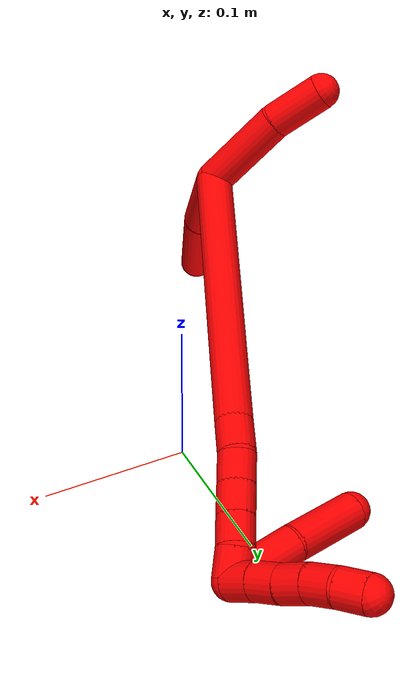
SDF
<sdf version="1.7">
 <world name="default">
  <model name="2">
   <static>0</static>
   <link name="2">
    <collision name="collision-cylinder-e_1_2_8">
     <pose>-0.020184 -0.002382 -0.024292 3.04385 -0.690933 -2.87145</pose>
     <geometry><cylinder><radius>0.0125</radius><length>0.063346</length></cylinder></geometry>
     <surface>
      <friction><ode><mu>1.16</mu><mu2>1.16</mu2><slip1>0</slip1><slip2>0</slip2></ode></friction>
      <contact><ode><kp>1e+06</kp><kd>1</kd><max_vel>0</max_vel><min_depth>0.001</min_depth></ode></contact>
     </surface>
    </collision>
    <visual name="visual-cylinder-e_1_2_8">
     <pose>-0.020184 -0.002382 -0.024292 3.04385 -0.690933 -2.87145</pose>
     <geometry><cylinder><radius>0.0125</radius><length>0.063346</length></cylinder></geometry>
     <material><ambient>1 0 0 1</ambient></material>
    </visual>
    <collision name="collision-cylinder-e_2_8_6">
     <pose>-0.071332 -0.010486 -0.078345 2.95163 -0.796141 -2.69601</pose>
     <geometry><cylinder><radius>0.0125</radius><length>0.086654</length></cylinder></geometry>
     <surface>
      <friction><ode><mu>1.16</mu><mu2>1.16</mu2><slip1>0</slip1><slip2>0</slip2></ode></friction>
      <contact><ode><kp>1e+06</kp><kd>1</kd><max_vel>0</max_vel><min_depth>0.001</min_depth></ode></contact>
     </surface>
    </collision>
    <visual name="visual-cylinder-e_2_8_6">
     <pose>-0.071332 -0.010486 -0.078345 2.95163 -0.796141 -2.69601</pose>
     <geometry><cylinder><radius>0.0125</radius><length>0.086654</length></cylinder></geometry>
     <material><ambient>1 0 0 1</ambient></material>
    </visual>
    <collision name="collision-cylinder-e_1_2_9">
     <pose>0.000333 -0.010667 0.028754 0.35522 0.010859 0.001949</pose>
     <geometry><cylinder><radius>0.0125</radius><length>0.061342</length></cylinder></geometry>
     <surface>
      <friction><ode><mu>1.16</mu><mu2>1.16</mu2><slip1>0</slip1><slip2>0</slip2></ode></friction>
      <contact><ode><kp>1e+06</kp><kd>1</kd><max_vel>0</max_vel><min_depth>0.001</min_depth></ode></contact>
     </surface>
    </collision>
    <visual name="visual-cylinder-e_1_2_9">
     <pose>0.000333 -0.010667 0.028754 0.35522 0.010859 0.001949</pose>
     <geometry><cylinder><radius>0.0125</radius><length>0.061342</length></cylinder></geometry>
     <material><ambient>1 0 0 1</ambient></material>
    </visual>
    <collision name="collision-cylinder-e_2_9_5">
     <pose>-0.002104 -0.026051 0.076047 0.249213 -0.143799 -0.018042</pose>
     <geometry><cylinder><radius>0.0125</radius><length>0.038658</length></cylinder></geometry>
     <surface>
      <friction><ode><mu>1.16</mu><mu2>1.16</mu2><slip1>0</slip1><slip2>0</slip2></ode></friction>
      <contact><ode><kp>1e+06</kp><kd>1</kd><max_vel>0</max_vel><min_depth>0.001</min_depth></ode></contact>
     </surface>
    </collision>
    <visual name="visual-cylinder-e_2_9_5">
     <pose>-0.002104 -0.026051 0.076047 0.249213 -0.143799 -0.018042</pose>
     <geometry><cylinder><radius>0.0125</radius><length>0.038658</length></cylinder></geometry>
     <material><ambient>1 0 0 1</ambient></material>
    </visual>
    <collision name="collision-cylinder-e_1_2_10">
     <pose>0.003849 0.09688 0.00784 -1.49005 0.039582 -0.036509</pose>
     <geometry><cylinder><radius>0.0125</radius><length>0.194546</length></cylinder></geometry>
     <surface>
      <friction><ode><mu>1.16</mu><mu2>1.16</mu2><slip1>0</slip1><slip2>0</slip2></ode></friction>
      <contact><ode><kp>1e+06</kp><kd>1</kd><max_vel>0</max_vel><min_depth>0.001</min_depth></ode></contact>
     </surface>
    </collision>
    <visual name="visual-cylinder-e_1_2_10">
     <pose>0.003849 0.09688 0.00784 -1.49005 0.039582 -0.036509</pose>
     <geometry><cylinder><radius>0.0125</radius><length>0.194546</length></cylinder></geometry>
     <material><ambient>1 0 0 1</ambient></material>
    </visual>
    <collision name="collision-cylinder-e_2_10_11">
     <pose>0.009028 0.205326 0.017463 -1.41776 0.113147 -0.097061</pose>
     <geometry><cylinder><radius>0.0125</radius><length>0.023555</length></cylinder></geometry>
     <surface>
      <friction><ode><mu>1.16</mu><mu2>1.16</mu2><slip1>0</slip1><slip2>0</slip2></ode></friction>
      <contact><ode><kp>1e+06</kp><kd>1</kd><max_vel>0</max_vel><min_depth>0.001</min_depth></ode></contact>
     </surface>
    </collision>
    <visual name="visual-cylinder-e_2_10_11">
     <pose>0.009028 0.205326 0.017463 -1.41776 0.113147 -0.097061</pose>
     <geometry><cylinder><radius>0.0125</radius><length>0.023555</length></cylinder></geometry>
     <material><ambient>1 0 0 1</ambient></material>
    </visual>
    <collision name="collision-cylinder-e_3_11_12">
     <pose>0.010601 0.227085 0.018735 -1.62091 0.023804 -0.025027</pose>
     <geometry><cylinder><radius>0.0125</radius><length>0.020418</length></cylinder></geometry>
     <surface>
      <friction><ode><mu>1.16</mu><mu2>1.16</mu2><slip1>0</slip1><slip2>0</slip2></ode></friction>
      <contact><ode><kp>1e+06</kp><kd>1</kd><max_vel>0</max_vel><min_depth>0.001</min_depth></ode></contact>
     </surface>
    </collision>
    <visual name="visual-cylinder-e_3_11_12">
     <pose>0.010601 0.227085 0.018735 -1.62091 0.023804 -0.025027</pose>
     <geometry><cylinder><radius>0.0125</radius><length>0.020418</length></cylinder></geometry>
     <material><ambient>1 0 0 1</ambient></material>
    </visual>
    <collision name="collision-cylinder-e_4_12_13">
     <pose>0.01174 0.247801 0.018181 -1.57487 0.084912 -0.085258</pose>
     <geometry><cylinder><radius>0.0125</radius><length>0.021123</length></cylinder></geometry>
     <surface>
      <friction><ode><mu>1.16</mu><mu2>1.16</mu2><slip1>0</slip1><slip2>0</slip2></ode></friction>
      <contact><ode><kp>1e+06</kp><kd>1</kd><max_vel>0</max_vel><min_depth>0.001</min_depth></ode></contact>
     </surface>
    </collision>
    <visual name="visual-cylinder-e_4_12_13">
     <pose>0.01174 0.247801 0.018181 -1.57487 0.084912 -0.085258</pose>
     <geometry><cylinder><radius>0.0125</radius><length>0.021123</length></cylinder></geometry>
     <material><ambient>1 0 0 1</ambient></material>
    </visual>
    <collision name="collision-cylinder-e_5_13_14">
     <pose>0.013461 0.268327 0.018213 -1.56331 0.082386 -0.081773</pose>
     <geometry><cylinder><radius>0.0125</radius><length>0.020073</length></cylinder></geometry>
     <surface>
      <friction><ode><mu>1.16</mu><mu2>1.16</mu2><slip1>0</slip1><slip2>0</slip2></ode></friction>
      <contact><ode><kp>1e+06</kp><kd>1</kd><max_vel>0</max_vel><min_depth>0.001</min_depth></ode></contact>
     </surface>
    </collision>
    <visual name="visual-cylinder-e_5_13_14">
     <pose>0.013461 0.268327 0.018213 -1.56331 0.082386 -0.081773</pose>
     <geometry><cylinder><radius>0.0125</radius><length>0.020073</length></cylinder></geometry>
     <material><ambient>1 0 0 1</ambient></material>
    </visual>
    <collision name="collision-cylinder-e_6_14_1">
     <pose>0.014048 0.288218 0.016047 -1.79365 -0.023584 0.029526</pose>
     <geometry><cylinder><radius>0.0125</radius><length>0.020285</length></cylinder></geometry>
     <surface>
      <friction><ode><mu>1.16</mu><mu2>1.16</mu2><slip1>0</slip1><slip2>0</slip2></ode></friction>
      <contact><ode><kp>1e+06</kp><kd>1</kd><max_vel>0</max_vel><min_depth>0.001</min_depth></ode></contact>
     </surface>
    </collision>
    <visual name="visual-cylinder-e_6_14_1">
     <pose>0.014048 0.288218 0.016047 -1.79365 -0.023584 0.029526</pose>
     <geometry><cylinder><radius>0.0125</radius><length>0.020285</length></cylinder></geometry>
     <material><ambient>1 0 0 1</ambient></material>
    </visual>
    <collision name="collision-cylinder-e_1_1_15">
     <pose>0.013866 0.30019 0.023586 -0.209893 0.00567 -0.000597</pose>
     <geometry><cylinder><radius>0.0125</radius><length>0.02</length></cylinder></geometry>
     <surface>
      <friction><ode><mu>1.16</mu><mu2>1.16</mu2><slip1>0</slip1><slip2>0</slip2></ode></friction>
      <contact><ode><kp>1e+06</kp><kd>1</kd><max_vel>0</max_vel><min_depth>0.001</min_depth></ode></contact>
     </surface>
    </collision>
    <visual name="visual-cylinder-e_1_1_15">
     <pose>0.013866 0.30019 0.023586 -0.209893 0.00567 -0.000597</pose>
     <geometry><cylinder><radius>0.0125</radius><length>0.02</length></cylinder></geometry>
     <material><ambient>1 0 0 1</ambient></material>
    </visual>
    <collision name="collision-cylinder-e_2_15_16">
     <pose>0.013654 0.305066 0.042965 -0.283072 -0.026807 0.00382</pose>
     <geometry><cylinder><radius>0.0125</radius><length>0.02</length></cylinder></geometry>
     <surface>
      <friction><ode><mu>1.16</mu><mu2>1.16</mu2><slip1>0</slip1><slip2>0</slip2></ode></friction>
      <contact><ode><kp>1e+06</kp><kd>1</kd><max_vel>0</max_vel><min_depth>0.001</min_depth></ode></contact>
     </surface>
    </collision>
    <visual name="visual-cylinder-e_2_15_16">
     <pose>0.013654 0.305066 0.042965 -0.283072 -0.026807 0.00382</pose>
     <geometry><cylinder><radius>0.0125</radius><length>0.02</length></cylinder></geometry>
     <material><ambient>1 0 0 1</ambient></material>
    </visual>
    <collision name="collision-cylinder-e_3_16_17">
     <pose>0.013212 0.309679 0.062395 -0.183168 -0.017389 0.001597</pose>
     <geometry><cylinder><radius>0.0125</radius><length>0.02</length></cylinder></geometry>
     <surface>
      <friction><ode><mu>1.16</mu><mu2>1.16</mu2><slip1>0</slip1><slip2>0</slip2></ode></friction>
      <contact><ode><kp>1e+06</kp><kd>1</kd><max_vel>0</max_vel><min_depth>0.001</min_depth></ode></contact>
     </surface>
    </collision>
    <visual name="visual-cylinder-e_3_16_17">
     <pose>0.013212 0.309679 0.062395 -0.183168 -0.017389 0.001597</pose>
     <geometry><cylinder><radius>0.0125</radius><length>0.02</length></cylinder></geometry>
     <material><ambient>1 0 0 1</ambient></material>
    </visual>
    <collision name="collision-cylinder-e_4_17_18">
     <pose>0.012602 0.314534 0.081745 -0.308492 -0.043701 0.006796</pose>
     <geometry><cylinder><radius>0.0125</radius><length>0.02</length></cylinder></geometry>
     <surface>
      <friction><ode><mu>1.16</mu><mu2>1.16</mu2><slip1>0</slip1><slip2>0</slip2></ode></friction>
      <contact><ode><kp>1e+06</kp><kd>1</kd><max_vel>0</max_vel><min_depth>0.001</min_depth></ode></contact>
     </surface>
    </collision>
    <visual name="visual-cylinder-e_4_17_18">
     <pose>0.012602 0.314534 0.081745 -0.308492 -0.043701 0.006796</pose>
     <geometry><cylinder><radius>0.0125</radius><length>0.02</length></cylinder></geometry>
     <material><ambient>1 0 0 1</ambient></material>
    </visual>
    <collision name="collision-cylinder-e_5_18_4">
     <pose>0.009853 0.321019 0.10036 -0.362774 -0.233238 0.042965</pose>
     <geometry><cylinder><radius>0.0125</radius><length>0.02</length></cylinder></geometry>
     <surface>
      <friction><ode><mu>1.16</mu><mu2>1.16</mu2><slip1>0</slip1><slip2>0</slip2></ode></friction>
      <contact><ode><kp>1e+06</kp><kd>1</kd><max_vel>0</max_vel><min_depth>0.001</min_depth></ode></contact>
     </surface>
    </collision>
    <visual name="visual-cylinder-e_5_18_4">
     <pose>0.009853 0.321019 0.10036 -0.362774 -0.233238 0.042965</pose>
     <geometry><cylinder><radius>0.0125</radius><length>0.02</length></cylinder></geometry>
     <material><ambient>1 0 0 1</ambient></material>
    </visual>
    <collision name="collision-cylinder-e_1_1_19">
     <pose>-0.003283 0.285153 0.024596 0.87629 -0.792268 -0.387004</pose>
     <geometry><cylinder><radius>0.0125</radius><length>0.048014</length></cylinder></geometry>
     <surface>
      <friction><ode><mu>1.16</mu><mu2>1.16</mu2><slip1>0</slip1><slip2>0</slip2></ode></friction>
      <contact><ode><kp>1e+06</kp><kd>1</kd><max_vel>0</max_vel><min_depth>0.001</min_depth></ode></contact>
     </surface>
    </collision>
    <visual name="visual-cylinder-e_1_1_19">
     <pose>-0.003283 0.285153 0.024596 0.87629 -0.792268 -0.387004</pose>
     <geometry><cylinder><radius>0.0125</radius><length>0.048014</length></cylinder></geometry>
     <material><ambient>1 0 0 1</ambient></material>
    </visual>
    <collision name="collision-cylinder-e_2_19_3">
     <pose>-0.041048 0.258785 0.043648 1.01869 -0.919614 -0.539658</pose>
     <geometry><cylinder><radius>0.0125</radius><length>0.051986</length></cylinder></geometry>
     <surface>
      <friction><ode><mu>1.16</mu><mu2>1.16</mu2><slip1>0</slip1><slip2>0</slip2></ode></friction>
      <contact><ode><kp>1e+06</kp><kd>1</kd><max_vel>0</max_vel><min_depth>0.001</min_depth></ode></contact>
     </surface>
    </collision>
    <visual name="visual-cylinder-e_2_19_3">
     <pose>-0.041048 0.258785 0.043648 1.01869 -0.919614 -0.539658</pose>
     <geometry><cylinder><radius>0.0125</radius><length>0.051986</length></cylinder></geometry>
     <material><ambient>1 0 0 1</ambient></material>
    </visual>
    <collision name="collision-sphere-3">
     <pose>-0.061723 0.245371 0.051912 0 -0 0</pose>
     <geometry><sphere><radius>0.0125</radius></sphere></geometry>
     <surface>
      <friction><ode><mu>1.16</mu><mu2>1.16</mu2><slip1>0</slip1><slip2>0</slip2></ode></friction>
      <contact><ode><kp>1e+06</kp><kd>1</kd><max_vel>0</max_vel><min_depth>0.001</min_depth></ode></contact>
     </surface>
    </collision>
    <visual name="visual-sphere-3">
     <pose>-0.061723 0.245371 0.051912 0 -0 0</pose>
     <geometry><sphere><radius>0.0125</radius></sphere></geometry>
     <material><ambient>1 0 0 1</ambient></material>
    </visual>
    <collision name="collision-sphere-19">
     <pose>-0.020374 0.2722 0.035385 0 -0 0</pose>
     <geometry><sphere><radius>0.0125</radius></sphere></geometry>
     <surface>
      <friction><ode><mu>1.16</mu><mu2>1.16</mu2><slip1>0</slip1><slip2>0</slip2></ode></friction>
      <contact><ode><kp>1e+06</kp><kd>1</kd><max_vel>0</max_vel><min_depth>0.001</min_depth></ode></contact>
     </surface>
    </collision>
    <visual name="visual-sphere-19">
     <pose>-0.020374 0.2722 0.035385 0 -0 0</pose>
     <geometry><sphere><radius>0.0125</radius></sphere></geometry>
     <material><ambient>1 0 0 1</ambient></material>
    </visual>
    <collision name="collision-sphere-10">
     <pose>0.007699 0.19376 0.015679 0 -0 0</pose>
     <geometry><sphere><radius>0.0125</radius></sphere></geometry>
     <surface>
      <friction><ode><mu>1.16</mu><mu2>1.16</mu2><slip1>0</slip1><slip2>0</slip2></ode></friction>
      <contact><ode><kp>1e+06</kp><kd>1</kd><max_vel>0</max_vel><min_depth>0.001</min_depth></ode></contact>
     </surface>
    </collision>
    <visual name="visual-sphere-10">
     <pose>0.007699 0.19376 0.015679 0 -0 0</pose>
     <geometry><sphere><radius>0.0125</radius></sphere></geometry>
     <material><ambient>1 0 0 1</ambient></material>
    </visual>
    <collision name="collision-sphere-5">
     <pose>-0.004874 -0.03077 0.094586 0 -0 0</pose>
     <geometry><sphere><radius>0.0125</radius></sphere></geometry>
     <surface>
      <friction><ode><mu>1.16</mu><mu2>1.16</mu2><slip1>0</slip1><slip2>0</slip2></ode></friction>
      <contact><ode><kp>1e+06</kp><kd>1</kd><max_vel>0</max_vel><min_depth>0.001</min_depth></ode></contact>
     </surface>
    </collision>
    <visual name="visual-sphere-5">
     <pose>-0.004874 -0.03077 0.094586 0 -0 0</pose>
     <geometry><sphere><radius>0.0125</radius></sphere></geometry>
     <material><ambient>1 0 0 1</ambient></material>
    </visual>
    <collision name="collision-sphere-6">
     <pose>-0.102296 -0.016209 -0.108106 0 -0 0</pose>
     <geometry><sphere><radius>0.0125</radius></sphere></geometry>
     <surface>
      <friction><ode><mu>1.16</mu><mu2>1.16</mu2><slip1>0</slip1><slip2>0</slip2></ode></friction>
      <contact><ode><kp>1e+06</kp><kd>1</kd><max_vel>0</max_vel><min_depth>0.001</min_depth></ode></contact>
     </surface>
    </collision>
    <visual name="visual-sphere-6">
     <pose>-0.102296 -0.016209 -0.108106 0 -0 0</pose>
     <geometry><sphere><radius>0.0125</radius></sphere></geometry>
     <material><ambient>1 0 0 1</ambient></material>
    </visual>
    <collision name="collision-sphere-9">
     <pose>0.000666 -0.021333 0.057509 0 -0 0</pose>
     <geometry><sphere><radius>0.0125</radius></sphere></geometry>
     <surface>
      <friction><ode><mu>1.16</mu><mu2>1.16</mu2><slip1>0</slip1><slip2>0</slip2></ode></friction>
      <contact><ode><kp>1e+06</kp><kd>1</kd><max_vel>0</max_vel><min_depth>0.001</min_depth></ode></contact>
     </surface>
    </collision>
    <visual name="visual-sphere-9">
     <pose>0.000666 -0.021333 0.057509 0 -0 0</pose>
     <geometry><sphere><radius>0.0125</radius></sphere></geometry>
     <material><ambient>1 0 0 1</ambient></material>
    </visual>
    <collision name="collision-sphere-2">
     <geometry><sphere><radius>0.0125</radius></sphere></geometry>
     <surface>
      <friction><ode><mu>1.16</mu><mu2>1.16</mu2><slip1>0</slip1><slip2>0</slip2></ode></friction>
      <contact><ode><kp>1e+06</kp><kd>1</kd><max_vel>0</max_vel><min_depth>0.001</min_depth></ode></contact>
     </surface>
    </collision>
    <visual name="visual-sphere-2">
     <geometry><sphere><radius>0.0125</radius></sphere></geometry>
     <material><ambient>1 0 0 1</ambient></material>
    </visual>
    <collision name="collision-sphere-8">
     <pose>-0.040368 -0.004764 -0.048585 0 -0 0</pose>
     <geometry><sphere><radius>0.0125</radius></sphere></geometry>
     <surface>
      <friction><ode><mu>1.16</mu><mu2>1.16</mu2><slip1>0</slip1><slip2>0</slip2></ode></friction>
      <contact><ode><kp>1e+06</kp><kd>1</kd><max_vel>0</max_vel><min_depth>0.001</min_depth></ode></contact>
     </surface>
    </collision>
    <visual name="visual-sphere-8">
     <pose>-0.040368 -0.004764 -0.048585 0 -0 0</pose>
     <geometry><sphere><radius>0.0125</radius></sphere></geometry>
     <material><ambient>1 0 0 1</ambient></material>
    </visual>
    <collision name="collision-sphere-11">
     <pose>0.010358 0.216891 0.019247 0 -0 0</pose>
     <geometry><sphere><radius>0.0125</radius></sphere></geometry>
     <surface>
      <friction><ode><mu>1.16</mu><mu2>1.16</mu2><slip1>0</slip1><slip2>0</slip2></ode></friction>
      <contact><ode><kp>1e+06</kp><kd>1</kd><max_vel>0</max_vel><min_depth>0.001</min_depth></ode></contact>
     </surface>
    </collision>
    <visual name="visual-sphere-11">
     <pose>0.010358 0.216891 0.019247 0 -0 0</pose>
     <geometry><sphere><radius>0.0125</radius></sphere></geometry>
     <material><ambient>1 0 0 1</ambient></material>
    </visual>
    <collision name="collision-sphere-12">
     <pose>0.010844 0.237278 0.018224 0 -0 0</pose>
     <geometry><sphere><radius>0.0125</radius></sphere></geometry>
     <surface>
      <friction><ode><mu>1.16</mu><mu2>1.16</mu2><slip1>0</slip1><slip2>0</slip2></ode></friction>
      <contact><ode><kp>1e+06</kp><kd>1</kd><max_vel>0</max_vel><min_depth>0.001</min_depth></ode></contact>
     </surface>
    </collision>
    <visual name="visual-sphere-12">
     <pose>0.010844 0.237278 0.018224 0 -0 0</pose>
     <geometry><sphere><radius>0.0125</radius></sphere></geometry>
     <material><ambient>1 0 0 1</ambient></material>
    </visual>
    <collision name="collision-sphere-13">
     <pose>0.012635 0.258324 0.018139 0 -0 0</pose>
     <geometry><sphere><radius>0.0125</radius></sphere></geometry>
     <surface>
      <friction><ode><mu>1.16</mu><mu2>1.16</mu2><slip1>0</slip1><slip2>0</slip2></ode></friction>
      <contact><ode><kp>1e+06</kp><kd>1</kd><max_vel>0</max_vel><min_depth>0.001</min_depth></ode></contact>
     </surface>
    </collision>
    <visual name="visual-sphere-13">
     <pose>0.012635 0.258324 0.018139 0 -0 0</pose>
     <geometry><sphere><radius>0.0125</radius></sphere></geometry>
     <material><ambient>1 0 0 1</ambient></material>
    </visual>
    <collision name="collision-sphere-14">
     <pose>0.014287 0.278329 0.018288 0 -0 0</pose>
     <geometry><sphere><radius>0.0125</radius></sphere></geometry>
     <surface>
      <friction><ode><mu>1.16</mu><mu2>1.16</mu2><slip1>0</slip1><slip2>0</slip2></ode></friction>
      <contact><ode><kp>1e+06</kp><kd>1</kd><max_vel>0</max_vel><min_depth>0.001</min_depth></ode></contact>
     </surface>
    </collision>
    <visual name="visual-sphere-14">
     <pose>0.014287 0.278329 0.018288 0 -0 0</pose>
     <geometry><sphere><radius>0.0125</radius></sphere></geometry>
     <material><ambient>1 0 0 1</ambient></material>
    </visual>
    <collision name="collision-sphere-1">
     <pose>0.013809 0.298107 0.013806 0 -0 0</pose>
     <geometry><sphere><radius>0.0125</radius></sphere></geometry>
     <surface>
      <friction><ode><mu>1.16</mu><mu2>1.16</mu2><slip1>0</slip1><slip2>0</slip2></ode></friction>
      <contact><ode><kp>1e+06</kp><kd>1</kd><max_vel>0</max_vel><min_depth>0.001</min_depth></ode></contact>
     </surface>
    </collision>
    <visual name="visual-sphere-1">
     <pose>0.013809 0.298107 0.013806 0 -0 0</pose>
     <geometry><sphere><radius>0.0125</radius></sphere></geometry>
     <material><ambient>1 0 0 1</ambient></material>
    </visual>
    <collision name="collision-sphere-18">
     <pose>0.012165 0.317567 0.091264 0 -0 0</pose>
     <geometry><sphere><radius>0.0125</radius></sphere></geometry>
     <surface>
      <friction><ode><mu>1.16</mu><mu2>1.16</mu2><slip1>0</slip1><slip2>0</slip2></ode></friction>
      <contact><ode><kp>1e+06</kp><kd>1</kd><max_vel>0</max_vel><min_depth>0.001</min_depth></ode></contact>
     </surface>
    </collision>
    <visual name="visual-sphere-18">
     <pose>0.012165 0.317567 0.091264 0 -0 0</pose>
     <geometry><sphere><radius>0.0125</radius></sphere></geometry>
     <material><ambient>1 0 0 1</ambient></material>
    </visual>
    <collision name="collision-sphere-15">
     <pose>0.013922 0.302274 0.033367 0 -0 0</pose>
     <geometry><sphere><radius>0.0125</radius></sphere></geometry>
     <surface>
      <friction><ode><mu>1.16</mu><mu2>1.16</mu2><slip1>0</slip1><slip2>0</slip2></ode></friction>
      <contact><ode><kp>1e+06</kp><kd>1</kd><max_vel>0</max_vel><min_depth>0.001</min_depth></ode></contact>
     </surface>
    </collision>
    <visual name="visual-sphere-15">
     <pose>0.013922 0.302274 0.033367 0 -0 0</pose>
     <geometry><sphere><radius>0.0125</radius></sphere></geometry>
     <material><ambient>1 0 0 1</ambient></material>
    </visual>
    <collision name="collision-sphere-16">
     <pose>0.013386 0.307858 0.052564 0 -0 0</pose>
     <geometry><sphere><radius>0.0125</radius></sphere></geometry>
     <surface>
      <friction><ode><mu>1.16</mu><mu2>1.16</mu2><slip1>0</slip1><slip2>0</slip2></ode></friction>
      <contact><ode><kp>1e+06</kp><kd>1</kd><max_vel>0</max_vel><min_depth>0.001</min_depth></ode></contact>
     </surface>
    </collision>
    <visual name="visual-sphere-16">
     <pose>0.013386 0.307858 0.052564 0 -0 0</pose>
     <geometry><sphere><radius>0.0125</radius></sphere></geometry>
     <material><ambient>1 0 0 1</ambient></material>
    </visual>
    <collision name="collision-sphere-17">
     <pose>0.013039 0.3115 0.072226 0 -0 0</pose>
     <geometry><sphere><radius>0.0125</radius></sphere></geometry>
     <surface>
      <friction><ode><mu>1.16</mu><mu2>1.16</mu2><slip1>0</slip1><slip2>0</slip2></ode></friction>
      <contact><ode><kp>1e+06</kp><kd>1</kd><max_vel>0</max_vel><min_depth>0.001</min_depth></ode></contact>
     </surface>
    </collision>
    <visual name="visual-sphere-17">
     <pose>0.013039 0.3115 0.072226 0 -0 0</pose>
     <geometry><sphere><radius>0.0125</radius></sphere></geometry>
     <material><ambient>1 0 0 1</ambient></material>
    </visual>
    <collision name="collision-sphere-4">
     <pose>0.007542 0.324472 0.109456 0 -0 0</pose>
     <geometry><sphere><radius>0.0125</radius></sphere></geometry>
     <surface>
      <friction><ode><mu>1.16</mu><mu2>1.16</mu2><slip1>0</slip1><slip2>0</slip2></ode></friction>
      <contact><ode><kp>1e+06</kp><kd>1</kd><max_vel>0</max_vel><min_depth>0.001</min_depth></ode></contact>
     </surface>
    </collision>
    <visual name="visual-sphere-4">
     <pose>0.007542 0.324472 0.109456 0 -0 0</pose>
     <geometry><sphere><radius>0.0125</radius></sphere></geometry>
     <material><ambient>1 0 0 1</ambient></material>
    </visual>
    <inertial>
     <pose>-0.008756 0.133628 0.012588 0 -0 0</pose>
     <mass>0.75</mass>
     <inertia>
      <ixx>0.000558</ixx>
      <ixy>0</ixy>
      <ixz>0</ixz>
      <iyy>0.000147</iyy>
      <iyz>0</iyz>
      <izz>-0.000535</izz>
     </inertia>
    </inertial>
   </link>
   <pose>-0.081431 -0.115647 0.135165 -0.662009 -0.705774 0.040305</pose>
  </model>
 </world>
</sdf>
